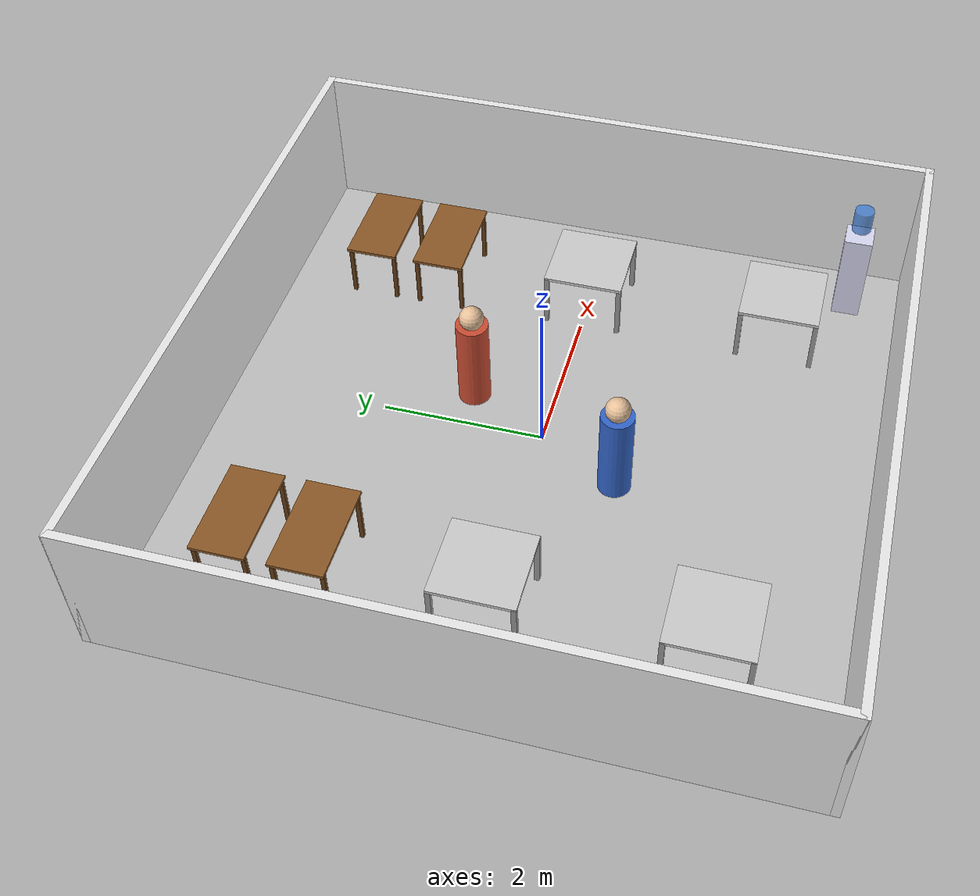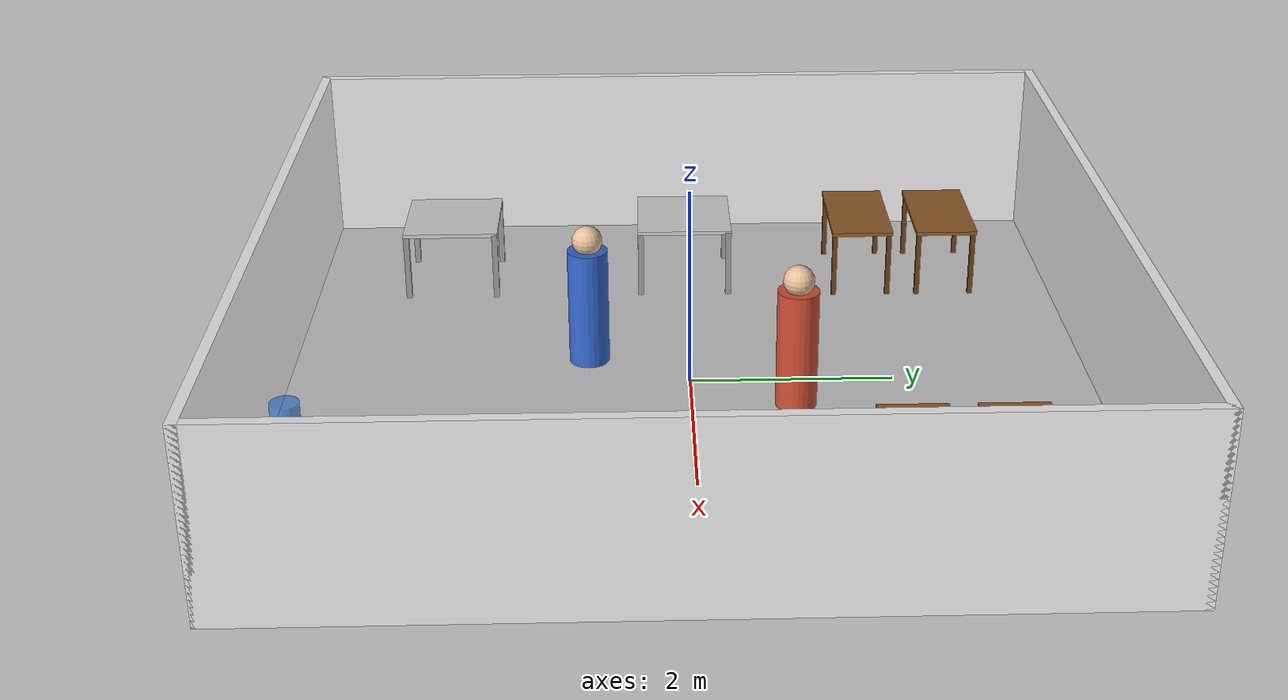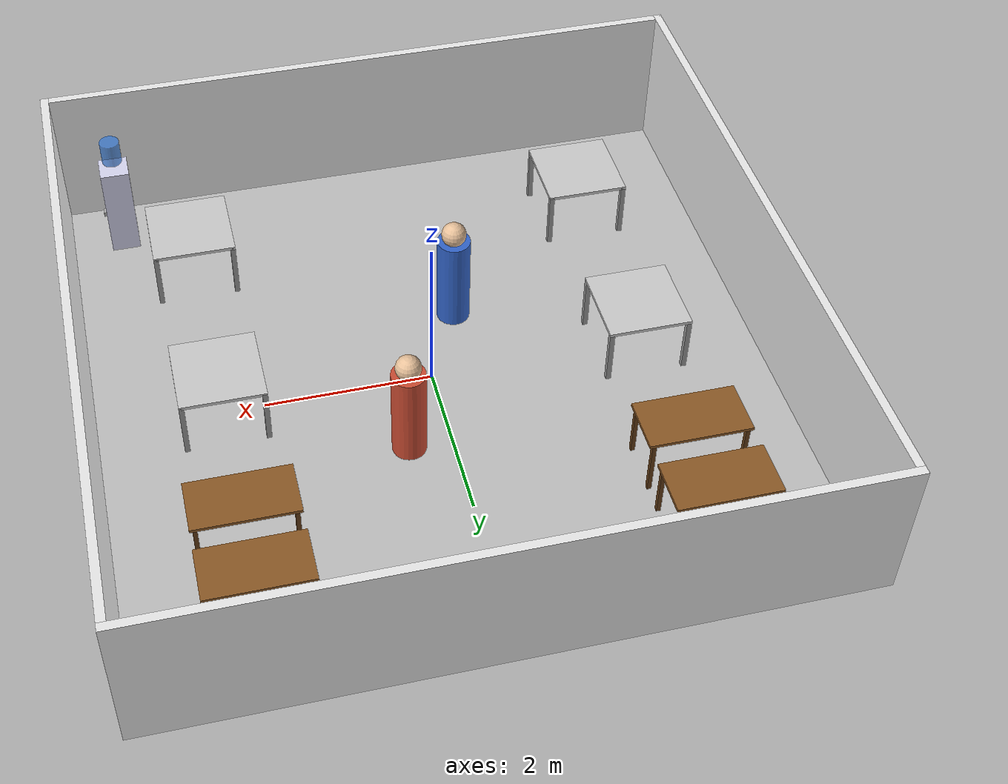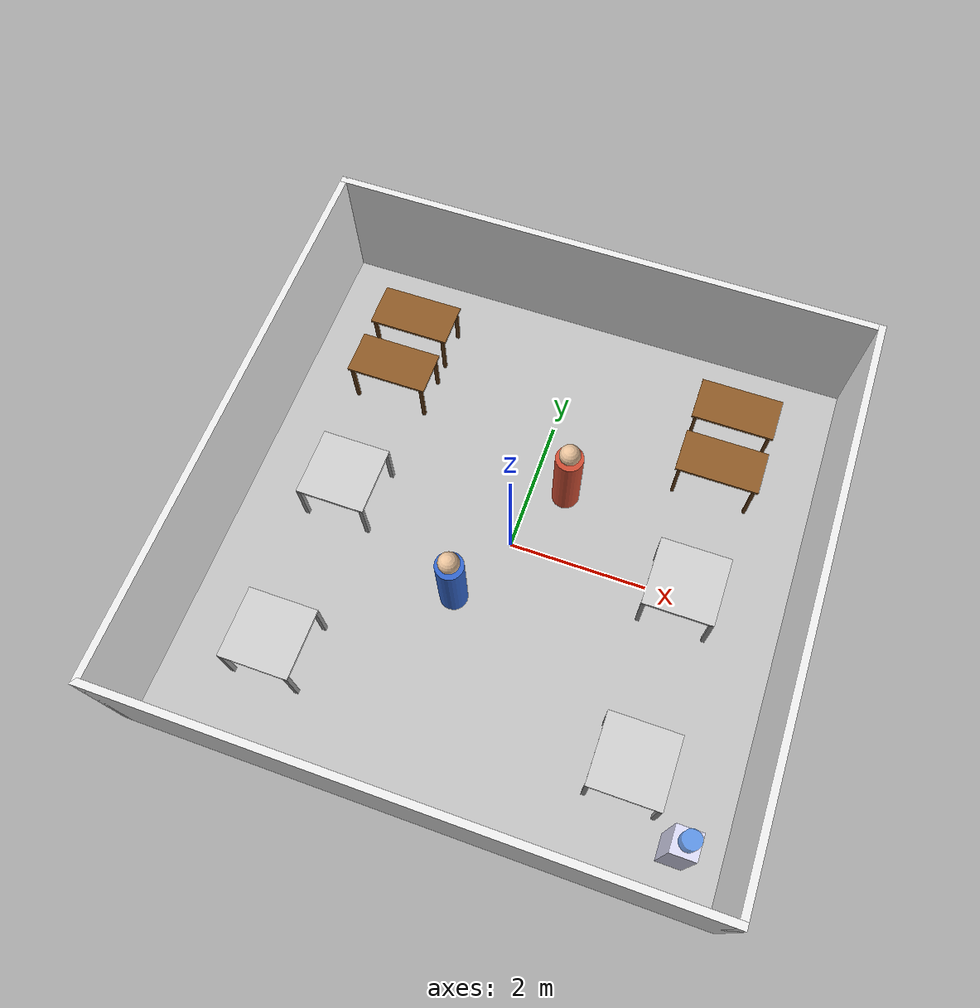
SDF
<?xml version="1.0"?>
<sdf version="1.10">
  <world name="office">

    <plugin filename="gz-sim-physics-system"
            name="gz::sim::systems::Physics"/>
    <plugin filename="gz-sim-user-commands-system"
            name="gz::sim::systems::UserCommands"/>
    <plugin filename="gz-sim-scene-broadcaster-system"
            name="gz::sim::systems::SceneBroadcaster"/>
    <plugin filename="gz-sim-sensors-system"
            name="gz::sim::systems::Sensors">
      <render_engine>ogre2</render_engine>
    </plugin>
    <plugin filename="gz-sim-imu-system"
            name="gz::sim::systems::Imu"/>

    <scene>
      <ambient>0.4 0.4 0.4 1</ambient>
      <background>0.7 0.7 0.7 1</background>
      <shadows>true</shadows>
    </scene>

    <light name="sun" type="directional">
      <cast_shadows>true</cast_shadows>
      <pose>0 0 10 0 0 0</pose>
      <diffuse>0.8 0.8 0.8 1</diffuse>
      <specular>0.2 0.2 0.2 1</specular>
      <direction>-0.5 0.1 -0.9</direction>
    </light>

    <!-- Floor -->
    <model name="floor">
      <static>true</static>
      <link name="link">
        <collision name="col">
          <geometry><plane><normal>0 0 1</normal><size>8 8</size></plane></geometry>
        </collision>
        <visual name="vis">
          <geometry><plane><normal>0 0 1</normal><size>8 8</size></plane></geometry>
          <material><ambient>0.75 0.75 0.75 1</ambient><diffuse>0.75 0.75 0.75 1</diffuse></material>
        </visual>
      </link>
    </model>

    <!-- North Wall -->
    <model name="wall_north">
      <static>true</static>
      <pose>0 4.0 0.915 0 0 0</pose>
      <link name="link">
        <collision name="col"><geometry><box><size>8.1 0.1 1.83</size></box></geometry></collision>
        <visual name="vis">
          <geometry><box><size>8.1 0.1 1.83</size></box></geometry>
          <material><ambient>0.92 0.92 0.92 1</ambient><diffuse>0.92 0.92 0.92 1</diffuse></material>
        </visual>
      </link>
    </model>

    <!-- South Wall -->
    <model name="wall_south">
      <static>true</static>
      <pose>0 -4.0 0.915 0 0 0</pose>
      <link name="link">
        <collision name="col"><geometry><box><size>8.1 0.1 1.83</size></box></geometry></collision>
        <visual name="vis">
          <geometry><box><size>8.1 0.1 1.83</size></box></geometry>
          <material><ambient>0.92 0.92 0.92 1</ambient><diffuse>0.92 0.92 0.92 1</diffuse></material>
        </visual>
      </link>
    </model>

    <!-- East Wall -->
    <model name="wall_east">
      <static>true</static>
      <pose>4.0 0 0.915 0 0 0</pose>
      <link name="link">
        <collision name="col"><geometry><box><size>0.1 8.1 1.83</size></box></geometry></collision>
        <visual name="vis">
          <geometry><box><size>0.1 8.1 1.83</size></box></geometry>
          <material><ambient>0.92 0.92 0.92 1</ambient><diffuse>0.92 0.92 0.92 1</diffuse></material>
        </visual>
      </link>
    </model>

    <!-- West Wall -->
    <model name="wall_west">
      <static>true</static>
      <pose>-4.0 0 0.915 0 0 0</pose>
      <link name="link">
        <collision name="col"><geometry><box><size>0.1 8.1 1.83</size></box></geometry></collision>
        <visual name="vis">
          <geometry><box><size>0.1 8.1 1.83</size></box></geometry>
          <material><ambient>0.92 0.92 0.92 1</ambient><diffuse>0.92 0.92 0.92 1</diffuse></material>
        </visual>
      </link>
    </model>

    <!-- Desk cluster A (top-left) -->
    <model name="desk_a1_top"><static>true</static><pose>-2.5 2.8 0.72 0 0 0</pose><link name="link"><collision name="col"><geometry><box><size>1.2 0.65 0.04</size></box></geometry></collision><visual name="vis"><geometry><box><size>1.2 0.65 0.04</size></box></geometry><material><ambient>0.55 0.35 0.15 1</ambient><diffuse>0.55 0.35 0.15 1</diffuse></material></visual></link></model>
    <model name="desk_a1_leg_fl"><static>true</static><pose>-1.96 3.09 0.36 0 0 0</pose><link name="link"><collision name="col"><geometry><box><size>0.05 0.05 0.72</size></box></geometry></collision><visual name="vis"><geometry><box><size>0.05 0.05 0.72</size></box></geometry><material><ambient>0.4 0.25 0.1 1</ambient><diffuse>0.4 0.25 0.1 1</diffuse></material></visual></link></model>
    <model name="desk_a1_leg_fr"><static>true</static><pose>-3.04 3.09 0.36 0 0 0</pose><link name="link"><collision name="col"><geometry><box><size>0.05 0.05 0.72</size></box></geometry></collision><visual name="vis"><geometry><box><size>0.05 0.05 0.72</size></box></geometry><material><ambient>0.4 0.25 0.1 1</ambient><diffuse>0.4 0.25 0.1 1</diffuse></material></visual></link></model>
    <model name="desk_a1_leg_bl"><static>true</static><pose>-1.96 2.51 0.36 0 0 0</pose><link name="link"><collision name="col"><geometry><box><size>0.05 0.05 0.72</size></box></geometry></collision><visual name="vis"><geometry><box><size>0.05 0.05 0.72</size></box></geometry><material><ambient>0.4 0.25 0.1 1</ambient><diffuse>0.4 0.25 0.1 1</diffuse></material></visual></link></model>
    <model name="desk_a1_leg_br"><static>true</static><pose>-3.04 2.51 0.36 0 0 0</pose><link name="link"><collision name="col"><geometry><box><size>0.05 0.05 0.72</size></box></geometry></collision><visual name="vis"><geometry><box><size>0.05 0.05 0.72</size></box></geometry><material><ambient>0.4 0.25 0.1 1</ambient><diffuse>0.4 0.25 0.1 1</diffuse></material></visual></link></model>

    <model name="desk_a2_top"><static>true</static><pose>-2.5 1.9 0.72 0 0 0</pose><link name="link"><collision name="col"><geometry><box><size>1.2 0.65 0.04</size></box></geometry></collision><visual name="vis"><geometry><box><size>1.2 0.65 0.04</size></box></geometry><material><ambient>0.55 0.35 0.15 1</ambient><diffuse>0.55 0.35 0.15 1</diffuse></material></visual></link></model>
    <model name="desk_a2_leg_fl"><static>true</static><pose>-1.96 2.19 0.36 0 0 0</pose><link name="link"><collision name="col"><geometry><box><size>0.05 0.05 0.72</size></box></geometry></collision><visual name="vis"><geometry><box><size>0.05 0.05 0.72</size></box></geometry><material><ambient>0.4 0.25 0.1 1</ambient><diffuse>0.4 0.25 0.1 1</diffuse></material></visual></link></model>
    <model name="desk_a2_leg_fr"><static>true</static><pose>-3.04 2.19 0.36 0 0 0</pose><link name="link"><collision name="col"><geometry><box><size>0.05 0.05 0.72</size></box></geometry></collision><visual name="vis"><geometry><box><size>0.05 0.05 0.72</size></box></geometry><material><ambient>0.4 0.25 0.1 1</ambient><diffuse>0.4 0.25 0.1 1</diffuse></material></visual></link></model>
    <model name="desk_a2_leg_bl"><static>true</static><pose>-1.96 1.61 0.36 0 0 0</pose><link name="link"><collision name="col"><geometry><box><size>0.05 0.05 0.72</size></box></geometry></collision><visual name="vis"><geometry><box><size>0.05 0.05 0.72</size></box></geometry><material><ambient>0.4 0.25 0.1 1</ambient><diffuse>0.4 0.25 0.1 1</diffuse></material></visual></link></model>
    <model name="desk_a2_leg_br"><static>true</static><pose>-3.04 1.61 0.36 0 0 0</pose><link name="link"><collision name="col"><geometry><box><size>0.05 0.05 0.72</size></box></geometry></collision><visual name="vis"><geometry><box><size>0.05 0.05 0.72</size></box></geometry><material><ambient>0.4 0.25 0.1 1</ambient><diffuse>0.4 0.25 0.1 1</diffuse></material></visual></link></model>

    <!-- Desk cluster B (top-right) -->
    <model name="desk_b1_top"><static>true</static><pose>2.5 2.8 0.72 0 0 0</pose><link name="link"><collision name="col"><geometry><box><size>1.2 0.65 0.04</size></box></geometry></collision><visual name="vis"><geometry><box><size>1.2 0.65 0.04</size></box></geometry><material><ambient>0.55 0.35 0.15 1</ambient><diffuse>0.55 0.35 0.15 1</diffuse></material></visual></link></model>
    <model name="desk_b1_leg_fl"><static>true</static><pose>3.04 3.09 0.36 0 0 0</pose><link name="link"><collision name="col"><geometry><box><size>0.05 0.05 0.72</size></box></geometry></collision><visual name="vis"><geometry><box><size>0.05 0.05 0.72</size></box></geometry><material><ambient>0.4 0.25 0.1 1</ambient><diffuse>0.4 0.25 0.1 1</diffuse></material></visual></link></model>
    <model name="desk_b1_leg_fr"><static>true</static><pose>1.96 3.09 0.36 0 0 0</pose><link name="link"><collision name="col"><geometry><box><size>0.05 0.05 0.72</size></box></geometry></collision><visual name="vis"><geometry><box><size>0.05 0.05 0.72</size></box></geometry><material><ambient>0.4 0.25 0.1 1</ambient><diffuse>0.4 0.25 0.1 1</diffuse></material></visual></link></model>
    <model name="desk_b1_leg_bl"><static>true</static><pose>3.04 2.51 0.36 0 0 0</pose><link name="link"><collision name="col"><geometry><box><size>0.05 0.05 0.72</size></box></geometry></collision><visual name="vis"><geometry><box><size>0.05 0.05 0.72</size></box></geometry><material><ambient>0.4 0.25 0.1 1</ambient><diffuse>0.4 0.25 0.1 1</diffuse></material></visual></link></model>
    <model name="desk_b1_leg_br"><static>true</static><pose>1.96 2.51 0.36 0 0 0</pose><link name="link"><collision name="col"><geometry><box><size>0.05 0.05 0.72</size></box></geometry></collision><visual name="vis"><geometry><box><size>0.05 0.05 0.72</size></box></geometry><material><ambient>0.4 0.25 0.1 1</ambient><diffuse>0.4 0.25 0.1 1</diffuse></material></visual></link></model>

    <model name="desk_b2_top"><static>true</static><pose>2.5 1.9 0.72 0 0 0</pose><link name="link"><collision name="col"><geometry><box><size>1.2 0.65 0.04</size></box></geometry></collision><visual name="vis"><geometry><box><size>1.2 0.65 0.04</size></box></geometry><material><ambient>0.55 0.35 0.15 1</ambient><diffuse>0.55 0.35 0.15 1</diffuse></material></visual></link></model>
    <model name="desk_b2_leg_fl"><static>true</static><pose>3.04 2.19 0.36 0 0 0</pose><link name="link"><collision name="col"><geometry><box><size>0.05 0.05 0.72</size></box></geometry></collision><visual name="vis"><geometry><box><size>0.05 0.05 0.72</size></box></geometry><material><ambient>0.4 0.25 0.1 1</ambient><diffuse>0.4 0.25 0.1 1</diffuse></material></visual></link></model>
    <model name="desk_b2_leg_fr"><static>true</static><pose>1.96 2.19 0.36 0 0 0</pose><link name="link"><collision name="col"><geometry><box><size>0.05 0.05 0.72</size></box></geometry></collision><visual name="vis"><geometry><box><size>0.05 0.05 0.72</size></box></geometry><material><ambient>0.4 0.25 0.1 1</ambient><diffuse>0.4 0.25 0.1 1</diffuse></material></visual></link></model>
    <model name="desk_b2_leg_bl"><static>true</static><pose>3.04 1.61 0.36 0 0 0</pose><link name="link"><collision name="col"><geometry><box><size>0.05 0.05 0.72</size></box></geometry></collision><visual name="vis"><geometry><box><size>0.05 0.05 0.72</size></box></geometry><material><ambient>0.4 0.25 0.1 1</ambient><diffuse>0.4 0.25 0.1 1</diffuse></material></visual></link></model>
    <model name="desk_b2_leg_br"><static>true</static><pose>1.96 1.61 0.36 0 0 0</pose><link name="link"><collision name="col"><geometry><box><size>0.05 0.05 0.72</size></box></geometry></collision><visual name="vis"><geometry><box><size>0.05 0.05 0.72</size></box></geometry><material><ambient>0.4 0.25 0.1 1</ambient><diffuse>0.4 0.25 0.1 1</diffuse></material></visual></link></model>

    <!-- Tables -->
    <model name="table_1_top"><static>true</static><pose>-2.5 -2.5 0.72 0 0 0</pose><link name="link"><collision name="col"><geometry><box><size>1.0 1.0 0.04</size></box></geometry></collision><visual name="vis"><geometry><box><size>1.0 1.0 0.04</size></box></geometry><material><ambient>0.8 0.8 0.8 1</ambient><diffuse>0.8 0.8 0.8 1</diffuse></material></visual></link></model>
    <model name="table_1_leg_fl"><static>true</static><pose>-2.03 -2.03 0.36 0 0 0</pose><link name="link"><collision name="col"><geometry><box><size>0.06 0.06 0.72</size></box></geometry></collision><visual name="vis"><geometry><box><size>0.06 0.06 0.72</size></box></geometry><material><ambient>0.6 0.6 0.6 1</ambient><diffuse>0.6 0.6 0.6 1</diffuse></material></visual></link></model>
    <model name="table_1_leg_fr"><static>true</static><pose>-2.97 -2.03 0.36 0 0 0</pose><link name="link"><collision name="col"><geometry><box><size>0.06 0.06 0.72</size></box></geometry></collision><visual name="vis"><geometry><box><size>0.06 0.06 0.72</size></box></geometry><material><ambient>0.6 0.6 0.6 1</ambient><diffuse>0.6 0.6 0.6 1</diffuse></material></visual></link></model>
    <model name="table_1_leg_bl"><static>true</static><pose>-2.03 -2.97 0.36 0 0 0</pose><link name="link"><collision name="col"><geometry><box><size>0.06 0.06 0.72</size></box></geometry></collision><visual name="vis"><geometry><box><size>0.06 0.06 0.72</size></box></geometry><material><ambient>0.6 0.6 0.6 1</ambient><diffuse>0.6 0.6 0.6 1</diffuse></material></visual></link></model>
    <model name="table_1_leg_br"><static>true</static><pose>-2.97 -2.97 0.36 0 0 0</pose><link name="link"><collision name="col"><geometry><box><size>0.06 0.06 0.72</size></box></geometry></collision><visual name="vis"><geometry><box><size>0.06 0.06 0.72</size></box></geometry><material><ambient>0.6 0.6 0.6 1</ambient><diffuse>0.6 0.6 0.6 1</diffuse></material></visual></link></model>

    <model name="table_2_top"><static>true</static><pose>2.5 -2.5 0.72 0 0 0</pose><link name="link"><collision name="col"><geometry><box><size>1.0 1.0 0.04</size></box></geometry></collision><visual name="vis"><geometry><box><size>1.0 1.0 0.04</size></box></geometry><material><ambient>0.8 0.8 0.8 1</ambient><diffuse>0.8 0.8 0.8 1</diffuse></material></visual></link></model>
    <model name="table_2_leg_fl"><static>true</static><pose>2.97 -2.03 0.36 0 0 0</pose><link name="link"><collision name="col"><geometry><box><size>0.06 0.06 0.72</size></box></geometry></collision><visual name="vis"><geometry><box><size>0.06 0.06 0.72</size></box></geometry><material><ambient>0.6 0.6 0.6 1</ambient><diffuse>0.6 0.6 0.6 1</diffuse></material></visual></link></model>
    <model name="table_2_leg_fr"><static>true</static><pose>2.03 -2.03 0.36 0 0 0</pose><link name="link"><collision name="col"><geometry><box><size>0.06 0.06 0.72</size></box></geometry></collision><visual name="vis"><geometry><box><size>0.06 0.06 0.72</size></box></geometry><material><ambient>0.6 0.6 0.6 1</ambient><diffuse>0.6 0.6 0.6 1</diffuse></material></visual></link></model>
    <model name="table_2_leg_bl"><static>true</static><pose>2.97 -2.97 0.36 0 0 0</pose><link name="link"><collision name="col"><geometry><box><size>0.06 0.06 0.72</size></box></geometry></collision><visual name="vis"><geometry><box><size>0.06 0.06 0.72</size></box></geometry><material><ambient>0.6 0.6 0.6 1</ambient><diffuse>0.6 0.6 0.6 1</diffuse></material></visual></link></model>
    <model name="table_2_leg_br"><static>true</static><pose>2.03 -2.97 0.36 0 0 0</pose><link name="link"><collision name="col"><geometry><box><size>0.06 0.06 0.72</size></box></geometry></collision><visual name="vis"><geometry><box><size>0.06 0.06 0.72</size></box></geometry><material><ambient>0.6 0.6 0.6 1</ambient><diffuse>0.6 0.6 0.6 1</diffuse></material></visual></link></model>

    <model name="table_3_top"><static>true</static><pose>-2.5 0 0.72 0 0 0</pose><link name="link"><collision name="col"><geometry><box><size>1.0 1.0 0.04</size></box></geometry></collision><visual name="vis"><geometry><box><size>1.0 1.0 0.04</size></box></geometry><material><ambient>0.8 0.8 0.8 1</ambient><diffuse>0.8 0.8 0.8 1</diffuse></material></visual></link></model>
    <model name="table_3_leg_fl"><static>true</static><pose>-2.03 0.47 0.36 0 0 0</pose><link name="link"><collision name="col"><geometry><box><size>0.06 0.06 0.72</size></box></geometry></collision><visual name="vis"><geometry><box><size>0.06 0.06 0.72</size></box></geometry><material><ambient>0.6 0.6 0.6 1</ambient><diffuse>0.6 0.6 0.6 1</diffuse></material></visual></link></model>
    <model name="table_3_leg_fr"><static>true</static><pose>-2.97 0.47 0.36 0 0 0</pose><link name="link"><collision name="col"><geometry><box><size>0.06 0.06 0.72</size></box></geometry></collision><visual name="vis"><geometry><box><size>0.06 0.06 0.72</size></box></geometry><material><ambient>0.6 0.6 0.6 1</ambient><diffuse>0.6 0.6 0.6 1</diffuse></material></visual></link></model>
    <model name="table_3_leg_bl"><static>true</static><pose>-2.03 -0.47 0.36 0 0 0</pose><link name="link"><collision name="col"><geometry><box><size>0.06 0.06 0.72</size></box></geometry></collision><visual name="vis"><geometry><box><size>0.06 0.06 0.72</size></box></geometry><material><ambient>0.6 0.6 0.6 1</ambient><diffuse>0.6 0.6 0.6 1</diffuse></material></visual></link></model>
    <model name="table_3_leg_br"><static>true</static><pose>-2.97 -0.47 0.36 0 0 0</pose><link name="link"><collision name="col"><geometry><box><size>0.06 0.06 0.72</size></box></geometry></collision><visual name="vis"><geometry><box><size>0.06 0.06 0.72</size></box></geometry><material><ambient>0.6 0.6 0.6 1</ambient><diffuse>0.6 0.6 0.6 1</diffuse></material></visual></link></model>

    <model name="table_4_top"><static>true</static><pose>2.5 0 0.72 0 0 0</pose><link name="link"><collision name="col"><geometry><box><size>1.0 1.0 0.04</size></box></geometry></collision><visual name="vis"><geometry><box><size>1.0 1.0 0.04</size></box></geometry><material><ambient>0.8 0.8 0.8 1</ambient><diffuse>0.8 0.8 0.8 1</diffuse></material></visual></link></model>
    <model name="table_4_leg_fl"><static>true</static><pose>2.97 0.47 0.36 0 0 0</pose><link name="link"><collision name="col"><geometry><box><size>0.06 0.06 0.72</size></box></geometry></collision><visual name="vis"><geometry><box><size>0.06 0.06 0.72</size></box></geometry><material><ambient>0.6 0.6 0.6 1</ambient><diffuse>0.6 0.6 0.6 1</diffuse></material></visual></link></model>
    <model name="table_4_leg_fr"><static>true</static><pose>2.03 0.47 0.36 0 0 0</pose><link name="link"><collision name="col"><geometry><box><size>0.06 0.06 0.72</size></box></geometry></collision><visual name="vis"><geometry><box><size>0.06 0.06 0.72</size></box></geometry><material><ambient>0.6 0.6 0.6 1</ambient><diffuse>0.6 0.6 0.6 1</diffuse></material></visual></link></model>
    <model name="table_4_leg_bl"><static>true</static><pose>2.97 -0.47 0.36 0 0 0</pose><link name="link"><collision name="col"><geometry><box><size>0.06 0.06 0.72</size></box></geometry></collision><visual name="vis"><geometry><box><size>0.06 0.06 0.72</size></box></geometry><material><ambient>0.6 0.6 0.6 1</ambient><diffuse>0.6 0.6 0.6 1</diffuse></material></visual></link></model>
    <model name="table_4_leg_br"><static>true</static><pose>2.03 -0.47 0.36 0 0 0</pose><link name="link"><collision name="col"><geometry><box><size>0.06 0.06 0.72</size></box></geometry></collision><visual name="vis"><geometry><box><size>0.06 0.06 0.72</size></box></geometry><material><ambient>0.6 0.6 0.6 1</ambient><diffuse>0.6 0.6 0.6 1</diffuse></material></visual></link></model>

    <!-- Humans -->
    <model name="human_1_body"><static>true</static><pose>-0.5 -1.0 0.6 0 0 0</pose><link name="link"><collision name="col"><geometry><cylinder><radius>0.2</radius><length>1.2</length></cylinder></geometry></collision><visual name="vis"><geometry><cylinder><radius>0.2</radius><length>1.2</length></cylinder></geometry><material><ambient>0.2 0.4 0.8 1</ambient><diffuse>0.2 0.4 0.8 1</diffuse></material></visual></link></model>
    <model name="human_1_head"><static>true</static><pose>-0.5 -1.0 1.3 0 0 0</pose><link name="link"><collision name="col"><geometry><sphere><radius>0.15</radius></sphere></geometry></collision><visual name="vis"><geometry><sphere><radius>0.15</radius></sphere></geometry><material><ambient>0.9 0.75 0.6 1</ambient><diffuse>0.9 0.75 0.6 1</diffuse></material></visual></link></model>
    <model name="human_2_body"><static>true</static><pose>0.5 1.0 0.6 0 0 0</pose><link name="link"><collision name="col"><geometry><cylinder><radius>0.2</radius><length>1.2</length></cylinder></geometry></collision><visual name="vis"><geometry><cylinder><radius>0.2</radius><length>1.2</length></cylinder></geometry><material><ambient>0.8 0.3 0.2 1</ambient><diffuse>0.8 0.3 0.2 1</diffuse></material></visual></link></model>
    <model name="human_2_head"><static>true</static><pose>0.5 1.0 1.3 0 0 0</pose><link name="link"><collision name="col"><geometry><sphere><radius>0.15</radius></sphere></geometry></collision><visual name="vis"><geometry><sphere><radius>0.15</radius></sphere></geometry><material><ambient>0.9 0.75 0.6 1</ambient><diffuse>0.9 0.75 0.6 1</diffuse></material></visual></link></model>

    <!-- Water Station -->
    <model name="water_station_body"><static>true</static><pose>3.3 -3.3 0.6 0 0 0</pose><link name="link"><collision name="col"><geometry><box><size>0.35 0.35 1.2</size></box></geometry></collision><visual name="vis"><geometry><box><size>0.35 0.35 1.2</size></box></geometry><material><ambient>0.85 0.85 0.95 1</ambient><diffuse>0.85 0.85 0.95 1</diffuse></material></visual></link></model>
    <model name="water_station_bottle"><static>true</static><pose>3.3 -3.3 1.45 0 0 0</pose><link name="link"><collision name="col"><geometry><cylinder><radius>0.12</radius><length>0.3</length></cylinder></geometry></collision><visual name="vis"><geometry><cylinder><radius>0.12</radius><length>0.3</length></cylinder></geometry><material><ambient>0.2 0.5 0.9 0.7</ambient><diffuse>0.2 0.5 0.9 0.7</diffuse></material></visual></link></model>
    <model name="water_station_tap"><static>true</static><pose>3.48 -3.3 0.5 0 0 0</pose><link name="link"><collision name="col"><geometry><box><size>0.06 0.08 0.06</size></box></geometry></collision><visual name="vis"><geometry><box><size>0.06 0.08 0.06</size></box></geometry><material><ambient>0.7 0.7 0.7 1</ambient><diffuse>0.7 0.7 0.7 1</diffuse></material></visual></link></model>

  </world>
</sdf>
